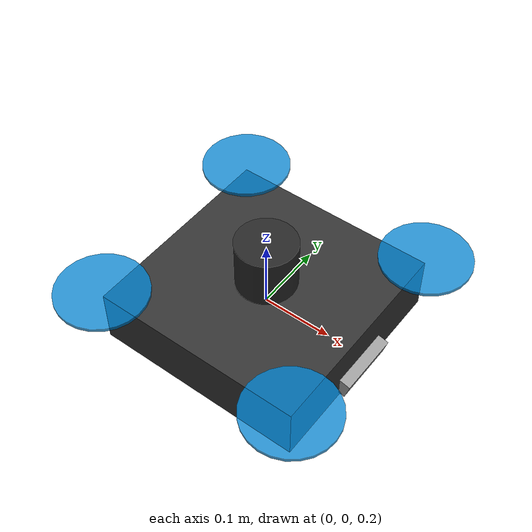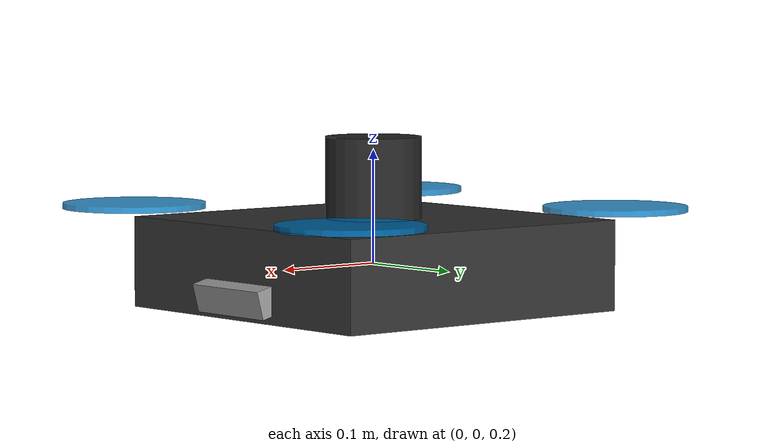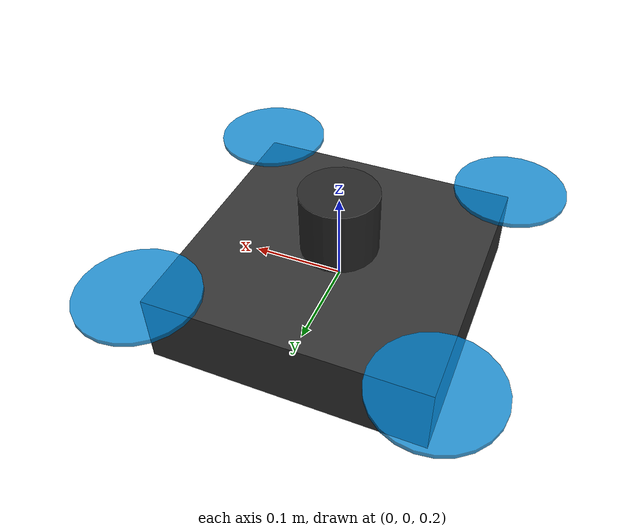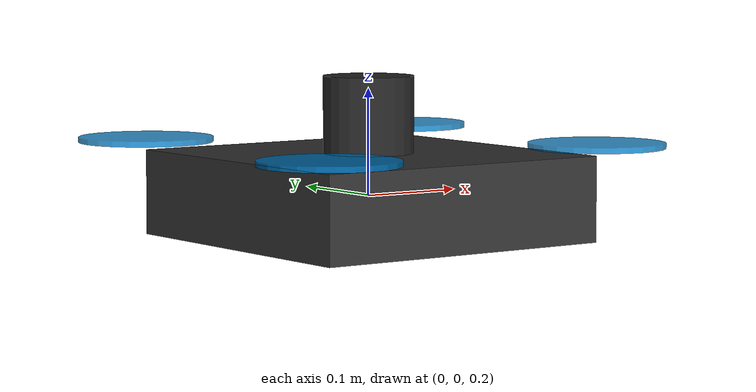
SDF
<?xml version="1.0" ?>
<sdf version="1.9">
  <model name="aetherscan_drone">
    <pose>0 0 0.2 0 0 0</pose>
    <self_collide>false</self_collide>
    <static>false</static>

    <link name="base_link">
      <inertial>
        <mass>1.5</mass>
        <inertia>
          <ixx>0.0119</ixx><ixy>0</ixy><ixz>0</ixz>
          <iyy>0.0119</iyy><iyz>0</iyz>
          <izz>0.0234</izz>
        </inertia>
      </inertial>

      <collision name="body_collision">
        <geometry>
          <box><size>0.30 0.30 0.08</size></box>
        </geometry>
      </collision>

      <visual name="body_visual">
        <geometry>
          <box><size>0.30 0.30 0.08</size></box>
        </geometry>
        <material>
          <ambient>0.15 0.15 0.15 1</ambient>
          <diffuse>0.2 0.2 0.2 1</diffuse>
          <specular>0.3 0.3 0.3 1</specular>
        </material>
      </visual>

      <!-- LED indicators -->
      <visual name="led_front">
        <pose>0.14 0 -0.02 0 0 0</pose>
        <geometry><sphere><radius>0.005</radius></sphere></geometry>
        <material>
          <ambient>0 1 0 1</ambient>
          <diffuse>0 1 0 1</diffuse>
          <emissive>0 0.8 0 1</emissive>
        </material>
      </visual>

      <visual name="led_rear">
        <pose>-0.14 0 -0.02 0 0 0</pose>
        <geometry><sphere><radius>0.005</radius></sphere></geometry>
        <material>
          <ambient>1 0 0 1</ambient>
          <diffuse>1 0 0 1</diffuse>
          <emissive>0.8 0 0 1</emissive>
        </material>
      </visual>

      <!-- IMU Sensor -->
      <sensor name="imu_sensor" type="imu">
        <always_on>true</always_on>
        <update_rate>200</update_rate>
        <imu>
          <angular_velocity>
            <x><noise type="gaussian"><mean>0</mean><stddev>0.0002</stddev></noise></x>
            <y><noise type="gaussian"><mean>0</mean><stddev>0.0002</stddev></noise></y>
            <z><noise type="gaussian"><mean>0</mean><stddev>0.0002</stddev></noise></z>
          </angular_velocity>
          <linear_acceleration>
            <x><noise type="gaussian"><mean>0</mean><stddev>0.017</stddev></noise></x>
            <y><noise type="gaussian"><mean>0</mean><stddev>0.017</stddev></noise></y>
            <z><noise type="gaussian"><mean>0</mean><stddev>0.017</stddev></noise></z>
          </linear_acceleration>
        </imu>
        <topic>/aetherscan/imu</topic>
      </sensor>

      <!-- Altimeter/Barometer -->
      <sensor name="altimeter" type="altimeter">
        <always_on>true</always_on>
        <update_rate>50</update_rate>
        <altimeter>
          <vertical_position>
            <noise type="gaussian"><mean>0</mean><stddev>0.01</stddev></noise>
          </vertical_position>
          <vertical_velocity>
            <noise type="gaussian"><mean>0</mean><stddev>0.01</stddev></noise>
          </vertical_velocity>
        </altimeter>
        <topic>/aetherscan/altimeter</topic>
      </sensor>
    </link>

    <!-- Front-Left Rotor -->
    <link name="rotor_fl">
      <pose>0.15 0.15 0.05 0 0 0</pose>
      <inertial>
        <mass>0.02</mass>
        <inertia>
          <ixx>0.00002</ixx><ixy>0</ixy><ixz>0</ixz>
          <iyy>0.00002</iyy><iyz>0</iyz>
          <izz>0.00004</izz>
        </inertia>
      </inertial>
      <visual name="rotor_fl_visual">
        <geometry><cylinder><radius>0.0635</radius><length>0.005</length></cylinder></geometry>
        <material>
          <ambient>0 0.4 0.7 0.8</ambient>
          <diffuse>0 0.5 0.8 0.8</diffuse>
        </material>
      </visual>
      <collision name="rotor_fl_collision">
        <geometry><cylinder><radius>0.0635</radius><length>0.005</length></cylinder></geometry>
      </collision>
    </link>
    <joint name="rotor_fl_joint" type="revolute">
      <parent>base_link</parent>
      <child>rotor_fl</child>
      <axis><xyz>0 0 1</xyz><limit><lower>-1e16</lower><upper>1e16</upper></limit></axis>
    </joint>

    <!-- Front-Right Rotor -->
    <link name="rotor_fr">
      <pose>0.15 -0.15 0.05 0 0 0</pose>
      <inertial>
        <mass>0.02</mass>
        <inertia>
          <ixx>0.00002</ixx><ixy>0</ixy><ixz>0</ixz>
          <iyy>0.00002</iyy><iyz>0</iyz>
          <izz>0.00004</izz>
        </inertia>
      </inertial>
      <visual name="rotor_fr_visual">
        <geometry><cylinder><radius>0.0635</radius><length>0.005</length></cylinder></geometry>
        <material>
          <ambient>0 0.4 0.7 0.8</ambient>
          <diffuse>0 0.5 0.8 0.8</diffuse>
        </material>
      </visual>
    </link>
    <joint name="rotor_fr_joint" type="revolute">
      <parent>base_link</parent>
      <child>rotor_fr</child>
      <axis><xyz>0 0 1</xyz><limit><lower>-1e16</lower><upper>1e16</upper></limit></axis>
    </joint>

    <!-- Rear-Left Rotor -->
    <link name="rotor_rl">
      <pose>-0.15 0.15 0.05 0 0 0</pose>
      <inertial>
        <mass>0.02</mass>
        <inertia>
          <ixx>0.00002</ixx><ixy>0</ixy><ixz>0</ixz>
          <iyy>0.00002</iyy><iyz>0</iyz>
          <izz>0.00004</izz>
        </inertia>
      </inertial>
      <visual name="rotor_rl_visual">
        <geometry><cylinder><radius>0.0635</radius><length>0.005</length></cylinder></geometry>
        <material>
          <ambient>0 0.4 0.7 0.8</ambient>
          <diffuse>0 0.5 0.8 0.8</diffuse>
        </material>
      </visual>
    </link>
    <joint name="rotor_rl_joint" type="revolute">
      <parent>base_link</parent>
      <child>rotor_rl</child>
      <axis><xyz>0 0 1</xyz><limit><lower>-1e16</lower><upper>1e16</upper></limit></axis>
    </joint>

    <!-- Rear-Right Rotor -->
    <link name="rotor_rr">
      <pose>-0.15 -0.15 0.05 0 0 0</pose>
      <inertial>
        <mass>0.02</mass>
        <inertia>
          <ixx>0.00002</ixx><ixy>0</ixy><ixz>0</ixz>
          <iyy>0.00002</iyy><iyz>0</iyz>
          <izz>0.00004</izz>
        </inertia>
      </inertial>
      <visual name="rotor_rr_visual">
        <geometry><cylinder><radius>0.0635</radius><length>0.005</length></cylinder></geometry>
        <material>
          <ambient>0 0.4 0.7 0.8</ambient>
          <diffuse>0 0.5 0.8 0.8</diffuse>
        </material>
      </visual>
    </link>
    <joint name="rotor_rr_joint" type="revolute">
      <parent>base_link</parent>
      <child>rotor_rr</child>
      <axis><xyz>0 0 1</xyz><limit><lower>-1e16</lower><upper>1e16</upper></limit></axis>
    </joint>

    <!-- Camera Link (RGB-D) -->
    <link name="camera_link">
      <pose>0.15 0 -0.02 0 0.26 0</pose>
      <inertial>
        <mass>0.1</mass>
        <inertia>
          <ixx>0.0001</ixx><ixy>0</ixy><ixz>0</ixz>
          <iyy>0.0001</iyy><iyz>0</iyz>
          <izz>0.0001</izz>
        </inertia>
      </inertial>
      <visual name="camera_visual">
        <geometry><box><size>0.025 0.09 0.025</size></box></geometry>
        <material>
          <ambient>0.5 0.5 0.5 1</ambient>
          <diffuse>0.6 0.6 0.6 1</diffuse>
        </material>
      </visual>
      <sensor name="rgbd_camera" type="rgbd_camera">
        <always_on>true</always_on>
        <update_rate>30</update_rate>
        <camera>
          <horizontal_fov>1.518</horizontal_fov>
          <image>
            <width>640</width>
            <height>480</height>
            <format>R8G8B8</format>
          </image>
          <clip><near>0.1</near><far>10.0</far></clip>
          <depth_camera>
            <clip><near>0.1</near><far>10.0</far></clip>
          </depth_camera>
          <noise>
            <type>gaussian</type>
            <mean>0</mean>
            <stddev>0.007</stddev>
          </noise>
        </camera>
        <topic>/aetherscan/camera</topic>
      </sensor>
    </link>
    <joint name="camera_joint" type="fixed">
      <parent>base_link</parent>
      <child>camera_link</child>
    </joint>

    <!-- 3D LiDAR -->
    <link name="lidar_link">
      <pose>0 0 0.076 0 0 0</pose>
      <inertial>
        <mass>0.3</mass>
        <inertia>
          <ixx>0.0002</ixx><ixy>0</ixy><ixz>0</ixz>
          <iyy>0.0002</iyy><iyz>0</iyz>
          <izz>0.0003</izz>
        </inertia>
      </inertial>
      <visual name="lidar_visual">
        <geometry><cylinder><radius>0.0425</radius><length>0.072</length></cylinder></geometry>
        <material>
          <ambient>0.1 0.1 0.1 1</ambient>
          <diffuse>0.15 0.15 0.15 1</diffuse>
          <specular>0.4 0.4 0.4 1</specular>
        </material>
      </visual>
      <sensor name="lidar_3d" type="gpu_lidar">
        <always_on>true</always_on>
        <update_rate>10</update_rate>
        <topic>/aetherscan/lidar</topic>
        <lidar>
          <scan>
            <horizontal>
              <samples>360</samples>
              <resolution>1</resolution>
              <min_angle>-3.14159265</min_angle>
              <max_angle>3.14159265</max_angle>
            </horizontal>
            <vertical>
              <samples>16</samples>
              <resolution>1</resolution>
              <min_angle>-0.261799</min_angle>
              <max_angle>0.261799</max_angle>
            </vertical>
          </scan>
          <range>
            <min>0.3</min>
            <max>20.0</max>
            <resolution>0.01</resolution>
          </range>
          <noise>
            <type>gaussian</type>
            <mean>0</mean>
            <stddev>0.005</stddev>
          </noise>
        </lidar>
      </sensor>
    </link>
    <joint name="lidar_joint" type="fixed">
      <parent>base_link</parent>
      <child>lidar_link</child>
    </joint>

    <!-- Downward Rangefinder -->
    <link name="rangefinder_link">
      <pose>0 0 -0.05 0 1.5708 0</pose>
      <inertial>
        <mass>0.01</mass>
        <inertia>
          <ixx>0.00001</ixx><ixy>0</ixy><ixz>0</ixz>
          <iyy>0.00001</iyy><iyz>0</iyz>
          <izz>0.00001</izz>
        </inertia>
      </inertial>
      <sensor name="downward_rangefinder" type="ray">
        <always_on>true</always_on>
        <update_rate>50</update_rate>
        <topic>/aetherscan/rangefinder</topic>
        <ray>
          <scan>
            <horizontal><samples>1</samples><resolution>1</resolution>
              <min_angle>0</min_angle><max_angle>0</max_angle>
            </horizontal>
          </scan>
          <range><min>0.05</min><max>8.0</max><resolution>0.001</resolution></range>
          <noise><type>gaussian</type><mean>0</mean><stddev>0.005</stddev></noise>
        </ray>
      </sensor>
    </link>
    <joint name="rangefinder_joint" type="fixed">
      <parent>base_link</parent>
      <child>rangefinder_link</child>
    </joint>

    <!-- Plugins -->
    <plugin filename="gz-sim-multicopter-motor-model-system"
            name="gz::sim::systems::MulticopterMotorModel">
      <robotNamespace>aetherscan</robotNamespace>
      <jointName>rotor_fl_joint</jointName>
      <linkName>rotor_fl</linkName>
      <turningDirection>ccw</turningDirection>
      <timeConstantUp>0.0125</timeConstantUp>
      <timeConstantDown>0.025</timeConstantDown>
      <maxRotVelocity>1500</maxRotVelocity>
      <motorConstant>5.84e-06</motorConstant>
      <momentConstant>0.06</momentConstant>
      <commandSubTopic>command/motor_speed</commandSubTopic>
      <motorNumber>0</motorNumber>
      <rotorDragCoefficient>2.0673e-04</rotorDragCoefficient>
      <rollingMomentCoefficient>1e-06</rollingMomentCoefficient>
      <rotorVelocitySlowdownSim>10</rotorVelocitySlowdownSim>
      <motorType>velocity</motorType>
    </plugin>

    <plugin filename="gz-sim-multicopter-control-system"
            name="gz::sim::systems::MulticopterVelocityControl">
      <robotNamespace>aetherscan</robotNamespace>
      <commandTopic>cmd_vel</commandTopic>
      <enableSubTopic>enable</enableSubTopic>
      <comLinkName>base_link</comLinkName>
      <velocityGain>
        <linear>5 5 5</linear>
        <angular>3 3 2</angular>
      </velocityGain>
      <maximumLinearAcceleration>2 2 3</maximumLinearAcceleration>
      <maximumAngularAcceleration>3 3 3</maximumAngularAcceleration>
      <maximumLinearVelocity>1.5 1.5 0.5</maximumLinearVelocity>
      <maximumAngularVelocity>1.0 1.0 1.0</maximumAngularVelocity>
    </plugin>

    <plugin filename="gz-sim-odometry-publisher-system"
            name="gz::sim::systems::OdometryPublisher">
      <odom_frame>odom</odom_frame>
      <robot_base_frame>base_link</robot_base_frame>
      <odom_topic>/aetherscan/odom</odom_topic>
      <dimensions>3</dimensions>
    </plugin>

    <plugin filename="gz-sim-pose-publisher-system"
            name="gz::sim::systems::PosePublisher">
      <publish_link_pose>true</publish_link_pose>
      <publish_nested_model_pose>true</publish_nested_model_pose>
      <update_frequency>50</update_frequency>
    </plugin>

  </model>
</sdf>
